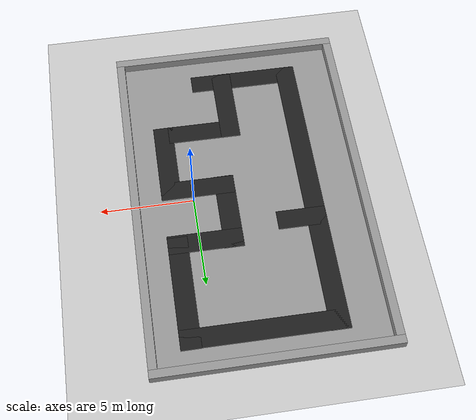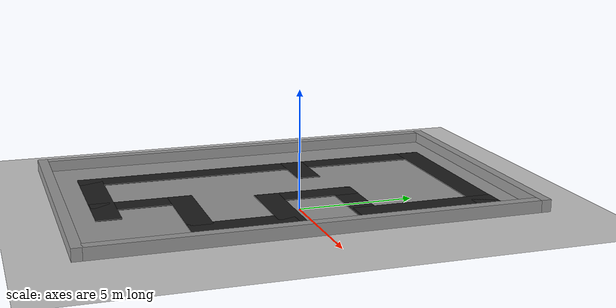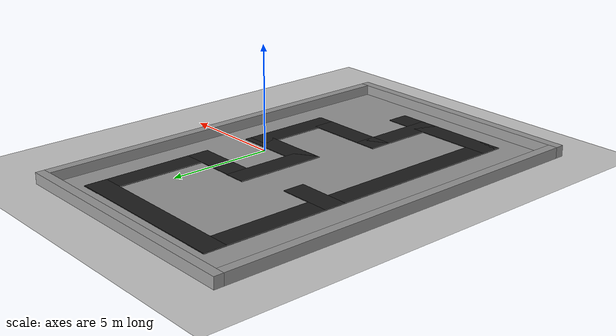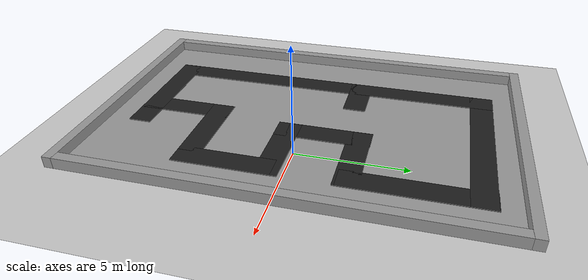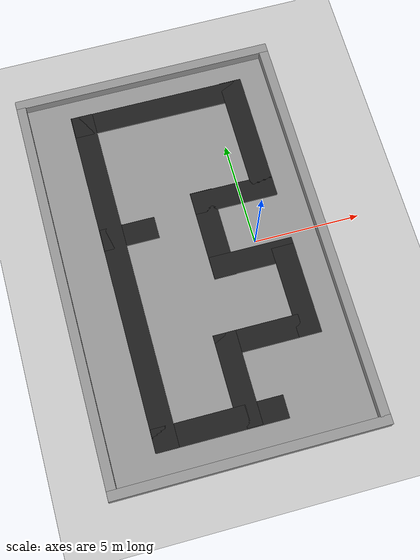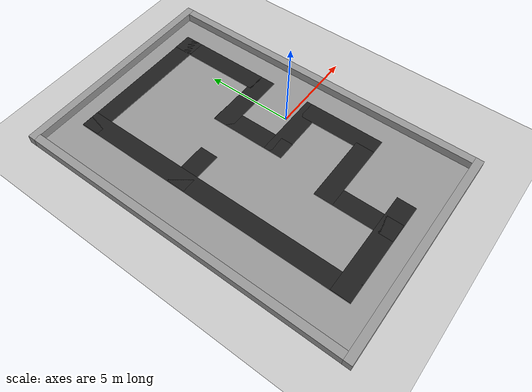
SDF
<sdf version="1.7">
 <world name="default">
  <light name="sun" type="directional">
   <pose>0 0 10 0 -0 0</pose>
   <diffuse>0.8 0.8 0.8 1</diffuse>
   <specular>0.2 0.2 0.2 1</specular>
   <attenuation>
    <range>1000</range>
    <constant>0.9</constant>
    <linear>0.01</linear>
    <quadratic>0.001</quadratic>
   </attenuation>
   <direction>-0.5 0.1 -0.9</direction>
   <spot><inner_angle>0</inner_angle><outer_angle>0</outer_angle><falloff>0</falloff></spot>
  </light>
  <model name="ground_plane">
   <static>1</static>
   <link name="link">
    <collision name="collision">
     <geometry><plane><normal>0 0 1</normal><size>100 100</size></plane></geometry>
     <surface>
      <contact><collide_bitmask>65535</collide_bitmask></contact>
      <friction><ode><mu>100</mu><mu2>50</mu2></ode></friction>
     </surface>
    </collision>
    <visual name="visual">
     <cast_shadows>0</cast_shadows>
     <geometry><plane><normal>0 0 1</normal><size>100 100</size></plane></geometry>
     <material>
      <script><uri>file://media/materials/scripts/gazebo.material</uri><name>Gazebo/Grey</name></script>
     </material>
    </visual>
   </link>
  </model>
  <gravity>0 0 -9.8</gravity>
  <magnetic_field>6e-06 2.3e-05 -4.2e-05</magnetic_field>
  <atmosphere type="adiabatic"/>
  <physics type="ode">
   <max_step_size>0.001</max_step_size>
   <real_time_factor>1</real_time_factor>
   <real_time_update_rate>1000</real_time_update_rate>
  </physics>
  <scene><ambient>0.4 0.4 0.4 1</ambient><background>0.7 0.7 0.7 1</background><shadows>1</shadows></scene>
  <spherical_coordinates>
   <surface_model>EARTH_WGS84</surface_model>
   <latitude_deg>0</latitude_deg>
   <longitude_deg>0</longitude_deg>
   <elevation>0</elevation>
   <heading_deg>0</heading_deg>
  </spherical_coordinates>
  <model name="unit_box_wall">
   <link name="unit_box::link">
    <inertial>
     <mass>1</mass>
     <inertia>
      <ixx>0.166667</ixx>
      <ixy>0</ixy>
      <ixz>0</ixz>
      <iyy>0.166667</iyy>
      <iyz>0</iyz>
      <izz>0.166667</izz>
     </inertia>
    </inertial>
    <visual name="visual">
     <geometry><box><size>0.446113 18.5982 1</size></box></geometry>
     <material>
      <script><name>Gazebo/Grey</name><uri>file://media/materials/scripts/gazebo.material</uri></script>
      <shader type="pixel"/>
     </material>
    </visual>
    <collision name="collision">
     <geometry><box><size>0.446113 18.5982 1</size></box></geometry>
     <surface>
      <friction>
       <ode><mu>1</mu><mu2>1</mu2><fdir1>0 0 0</fdir1><slip1>0</slip1><slip2>0</slip2></ode>
       <torsional>
        <coefficient>1</coefficient>
        <patch_radius>0</patch_radius>
        <surface_radius>0</surface_radius>
        <use_patch_radius>1</use_patch_radius>
        <ode><slip>0</slip></ode>
       </torsional>
      </friction>
      <bounce><restitution_coefficient>0</restitution_coefficient><threshold>1e+06</threshold></bounce>
      <contact>
       <collide_without_contact>0</collide_without_contact>
       <collide_without_contact_bitmask>1</collide_without_contact_bitmask>
       <collide_bitmask>1</collide_bitmask>
       <ode>
        <soft_cfm>0</soft_cfm>
        <soft_erp>0.2</soft_erp>
        <kp>1e+13</kp>
        <kd>1</kd>
        <max_vel>0.01</max_vel>
        <min_depth>0</min_depth>
       </ode>
       <bullet>
        <split_impulse>1</split_impulse>
        <split_impulse_penetration_threshold>-0.01</split_impulse_penetration_threshold>
        <soft_cfm>0</soft_cfm>
        <soft_erp>0.2</soft_erp>
        <kp>1e+13</kp>
        <kd>1</kd>
       </bullet>
      </contact>
     </surface>
    </collision>
   </link>
   <static>1</static>
   <allow_auto_disable>0</allow_auto_disable>
   <pose>-9.02597 0.034785 0 0 -0 0</pose>
  </model>
  <model name="unit_box_wall_clone">
   <link name="unit_box::link">
    <inertial>
     <mass>1</mass>
     <inertia>
      <ixx>0.166667</ixx>
      <ixy>0</ixy>
      <ixz>0</ixz>
      <iyy>0.166667</iyy>
      <iyz>0</iyz>
      <izz>0.166667</izz>
     </inertia>
    </inertial>
    <visual name="visual">
     <geometry><box><size>0.446113 18.5982 1</size></box></geometry>
     <material>
      <script><name>Gazebo/Grey</name><uri>file://media/materials/scripts/gazebo.material</uri></script>
      <shader type="pixel"/>
     </material>
    </visual>
    <collision name="collision">
     <geometry><box><size>0.446113 18.5982 1</size></box></geometry>
     <surface>
      <friction>
       <ode><mu>1</mu><mu2>1</mu2><fdir1>0 0 0</fdir1><slip1>0</slip1><slip2>0</slip2></ode>
       <torsional>
        <coefficient>1</coefficient>
        <patch_radius>0</patch_radius>
        <surface_radius>0</surface_radius>
        <use_patch_radius>1</use_patch_radius>
        <ode><slip>0</slip></ode>
       </torsional>
      </friction>
      <bounce><restitution_coefficient>0</restitution_coefficient><threshold>1e+06</threshold></bounce>
      <contact>
       <collide_without_contact>0</collide_without_contact>
       <collide_without_contact_bitmask>1</collide_without_contact_bitmask>
       <collide_bitmask>1</collide_bitmask>
       <ode>
        <soft_cfm>0</soft_cfm>
        <soft_erp>0.2</soft_erp>
        <kp>1e+13</kp>
        <kd>1</kd>
        <max_vel>0.01</max_vel>
        <min_depth>0</min_depth>
       </ode>
       <bullet>
        <split_impulse>1</split_impulse>
        <split_impulse_penetration_threshold>-0.01</split_impulse_penetration_threshold>
        <soft_cfm>0</soft_cfm>
        <soft_erp>0.2</soft_erp>
        <kp>1e+13</kp>
        <kd>1</kd>
       </bullet>
      </contact>
     </surface>
    </collision>
   </link>
   <static>1</static>
   <allow_auto_disable>0</allow_auto_disable>
   <pose>3.13218 0.00569 0 0 -0 0</pose>
  </model>
  <model name="unit_box_wall_clone_0">
   <link name="unit_box::link">
    <inertial>
     <mass>1</mass>
     <inertia>
      <ixx>0.166667</ixx>
      <ixy>0</ixy>
      <ixz>0</ixz>
      <iyy>0.166667</iyy>
      <iyz>0</iyz>
      <izz>0.166667</izz>
     </inertia>
    </inertial>
    <visual name="visual">
     <geometry><box><size>0.446113 12.605 1</size></box></geometry>
     <material>
      <script><name>Gazebo/Grey</name><uri>file://media/materials/scripts/gazebo.material</uri></script>
      <shader type="pixel"/>
     </material>
    </visual>
    <collision name="collision">
     <geometry><box><size>0.446113 12.605 1</size></box></geometry>
     <surface>
      <friction>
       <ode><mu>1</mu><mu2>1</mu2><fdir1>0 0 0</fdir1><slip1>0</slip1><slip2>0</slip2></ode>
       <torsional>
        <coefficient>1</coefficient>
        <patch_radius>0</patch_radius>
        <surface_radius>0</surface_radius>
        <use_patch_radius>1</use_patch_radius>
        <ode><slip>0</slip></ode>
       </torsional>
      </friction>
      <bounce><restitution_coefficient>0</restitution_coefficient><threshold>1e+06</threshold></bounce>
      <contact>
       <collide_without_contact>0</collide_without_contact>
       <collide_without_contact_bitmask>1</collide_without_contact_bitmask>
       <collide_bitmask>1</collide_bitmask>
       <ode>
        <soft_cfm>0</soft_cfm>
        <soft_erp>0.2</soft_erp>
        <kp>1e+13</kp>
        <kd>1</kd>
        <max_vel>0.01</max_vel>
        <min_depth>0</min_depth>
       </ode>
       <bullet>
        <split_impulse>1</split_impulse>
        <split_impulse_penetration_threshold>-0.01</split_impulse_penetration_threshold>
        <soft_cfm>0</soft_cfm>
        <soft_erp>0.2</soft_erp>
        <kp>1e+13</kp>
        <kd>1</kd>
       </bullet>
      </contact>
     </surface>
    </collision>
   </link>
   <static>1</static>
   <allow_auto_disable>0</allow_auto_disable>
   <pose>-2.94746 -9.48662 0 0 0 -1.57124</pose>
  </model>
  <model name="unit_box_wall_clone_0_clone">
   <link name="unit_box::link">
    <inertial>
     <mass>1</mass>
     <inertia>
      <ixx>0.166667</ixx>
      <ixy>0</ixy>
      <ixz>0</ixz>
      <iyy>0.166667</iyy>
      <iyz>0</iyz>
      <izz>0.166667</izz>
     </inertia>
    </inertial>
    <visual name="visual">
     <geometry><box><size>0.446113 12.605 1</size></box></geometry>
     <material>
      <script><name>Gazebo/Grey</name><uri>file://media/materials/scripts/gazebo.material</uri></script>
      <shader type="pixel"/>
     </material>
    </visual>
    <collision name="collision">
     <geometry><box><size>0.446113 12.605 1</size></box></geometry>
     <surface>
      <friction>
       <ode><mu>1</mu><mu2>1</mu2><fdir1>0 0 0</fdir1><slip1>0</slip1><slip2>0</slip2></ode>
       <torsional>
        <coefficient>1</coefficient>
        <patch_radius>0</patch_radius>
        <surface_radius>0</surface_radius>
        <use_patch_radius>1</use_patch_radius>
        <ode><slip>0</slip></ode>
       </torsional>
      </friction>
      <bounce><restitution_coefficient>0</restitution_coefficient><threshold>1e+06</threshold></bounce>
      <contact>
       <collide_without_contact>0</collide_without_contact>
       <collide_without_contact_bitmask>1</collide_without_contact_bitmask>
       <collide_bitmask>1</collide_bitmask>
       <ode>
        <soft_cfm>0</soft_cfm>
        <soft_erp>0.2</soft_erp>
        <kp>1e+13</kp>
        <kd>1</kd>
        <max_vel>0.01</max_vel>
        <min_depth>0</min_depth>
       </ode>
       <bullet>
        <split_impulse>1</split_impulse>
        <split_impulse_penetration_threshold>-0.01</split_impulse_penetration_threshold>
        <soft_cfm>0</soft_cfm>
        <soft_erp>0.2</soft_erp>
        <kp>1e+13</kp>
        <kd>1</kd>
       </bullet>
      </contact>
     </surface>
    </collision>
   </link>
   <static>1</static>
   <allow_auto_disable>0</allow_auto_disable>
   <pose>-2.94746 9.5173 0 0 0 -1.57124</pose>
  </model>
  <model name="unit_box_wall_0">
   <link name="unit_box::link">
    <inertial>
     <mass>1</mass>
     <inertia>
      <ixx>0.166667</ixx>
      <ixy>0</ixy>
      <ixz>0</ixz>
      <iyy>0.166667</iyy>
      <iyz>0</iyz>
      <izz>0.166667</izz>
     </inertia>
    </inertial>
    <visual name="visual">
     <geometry><box><size>11.9617 18.9194 0.225866</size></box></geometry>
     <material>
      <script><name>Gazebo/Grey</name><uri>file://media/materials/scripts/gazebo.material</uri></script>
      <shader type="pixel"/>
     </material>
    </visual>
    <collision name="collision">
     <geometry><box><size>11.9617 18.9194 0.225866</size></box></geometry>
     <surface>
      <friction>
       <ode><mu>1</mu><mu2>1</mu2><fdir1>0 0 0</fdir1><slip1>0</slip1><slip2>0</slip2></ode>
       <torsional>
        <coefficient>1</coefficient>
        <patch_radius>0</patch_radius>
        <surface_radius>0</surface_radius>
        <use_patch_radius>1</use_patch_radius>
        <ode><slip>0</slip></ode>
       </torsional>
      </friction>
      <bounce><restitution_coefficient>0</restitution_coefficient><threshold>1e+06</threshold></bounce>
      <contact>
       <collide_without_contact>0</collide_without_contact>
       <collide_without_contact_bitmask>1</collide_without_contact_bitmask>
       <collide_bitmask>1</collide_bitmask>
       <ode>
        <soft_cfm>0</soft_cfm>
        <soft_erp>0.2</soft_erp>
        <kp>1e+13</kp>
        <kd>1</kd>
        <max_vel>0.01</max_vel>
        <min_depth>0</min_depth>
       </ode>
       <bullet>
        <split_impulse>1</split_impulse>
        <split_impulse_penetration_threshold>-0.01</split_impulse_penetration_threshold>
        <soft_cfm>0</soft_cfm>
        <soft_erp>0.2</soft_erp>
        <kp>1e+13</kp>
        <kd>1</kd>
       </bullet>
      </contact>
     </surface>
    </collision>
   </link>
   <static>1</static>
   <allow_auto_disable>0</allow_auto_disable>
   <pose>-3.06639 0.169039 -0.095815 0 -0 0</pose>
  </model>
  <model name="unit_box_wall_1">
   <link name="unit_box::link">
    <inertial>
     <mass>1</mass>
     <inertia>
      <ixx>0.166667</ixx>
      <ixy>0</ixy>
      <ixz>0</ixz>
      <iyy>0.166667</iyy>
      <iyz>0</iyz>
      <izz>0.166667</izz>
     </inertia>
    </inertial>
    <visual name="visual">
     <geometry><box><size>1.06778 16.6278 1</size></box></geometry>
     <material>
      <script><name>Gazebo/Black</name><uri>file://media/materials/scripts/gazebo.material</uri></script>
      <shader type="pixel"/>
     </material>
    </visual>
    <collision name="collision">
     <geometry><box><size>1.06778 16.6278 1</size></box></geometry>
     <surface>
      <friction>
       <ode><mu>1</mu><mu2>1</mu2><fdir1>0 0 0</fdir1><slip1>0</slip1><slip2>0</slip2></ode>
       <torsional>
        <coefficient>1</coefficient>
        <patch_radius>0</patch_radius>
        <surface_radius>0</surface_radius>
        <use_patch_radius>1</use_patch_radius>
        <ode><slip>0</slip></ode>
       </torsional>
      </friction>
      <bounce><restitution_coefficient>0</restitution_coefficient><threshold>1e+06</threshold></bounce>
      <contact>
       <collide_without_contact>0</collide_without_contact>
       <collide_without_contact_bitmask>1</collide_without_contact_bitmask>
       <collide_bitmask>1</collide_bitmask>
       <ode>
        <soft_cfm>0</soft_cfm>
        <soft_erp>0.2</soft_erp>
        <kp>1e+13</kp>
        <kd>1</kd>
        <max_vel>0.01</max_vel>
        <min_depth>0</min_depth>
       </ode>
       <bullet>
        <split_impulse>1</split_impulse>
        <split_impulse_penetration_threshold>-0.01</split_impulse_penetration_threshold>
        <soft_cfm>0</soft_cfm>
        <soft_erp>0.2</soft_erp>
        <kp>1e+13</kp>
        <kd>1</kd>
       </bullet>
      </contact>
     </surface>
    </collision>
   </link>
   <static>1</static>
   <allow_auto_disable>0</allow_auto_disable>
   <pose>-6.30839 0.101733 -0.45067 0 -0 0</pose>
  </model>
  <model name="unit_box_wall_1_clone">
   <link name="unit_box::link">
    <inertial>
     <mass>1</mass>
     <inertia>
      <ixx>0.166667</ixx>
      <ixy>0</ixy>
      <ixz>0</ixz>
      <iyy>0.166667</iyy>
      <iyz>0</iyz>
      <izz>0.166667</izz>
     </inertia>
    </inertial>
    <visual name="visual">
     <geometry><box><size>1.06778 6.01301 1</size></box></geometry>
     <material>
      <script><name>Gazebo/Black</name><uri>file://media/materials/scripts/gazebo.material</uri></script>
      <shader type="pixel"/>
     </material>
    </visual>
    <collision name="collision">
     <geometry><box><size>1.06778 6.01301 1</size></box></geometry>
     <surface>
      <friction>
       <ode><mu>1</mu><mu2>1</mu2><fdir1>0 0 0</fdir1><slip1>0</slip1><slip2>0</slip2></ode>
       <torsional>
        <coefficient>1</coefficient>
        <patch_radius>0</patch_radius>
        <surface_radius>0</surface_radius>
        <use_patch_radius>1</use_patch_radius>
        <ode><slip>0</slip></ode>
       </torsional>
      </friction>
      <bounce><restitution_coefficient>0</restitution_coefficient><threshold>1e+06</threshold></bounce>
      <contact>
       <collide_without_contact>0</collide_without_contact>
       <collide_without_contact_bitmask>1</collide_without_contact_bitmask>
       <collide_bitmask>1</collide_bitmask>
       <ode>
        <soft_cfm>0</soft_cfm>
        <soft_erp>0.2</soft_erp>
        <kp>1e+13</kp>
        <kd>1</kd>
        <max_vel>0.01</max_vel>
        <min_depth>0</min_depth>
       </ode>
       <bullet>
        <split_impulse>1</split_impulse>
        <split_impulse_penetration_threshold>-0.01</split_impulse_penetration_threshold>
        <soft_cfm>0</soft_cfm>
        <soft_erp>0.2</soft_erp>
        <kp>1e+13</kp>
        <kd>1</kd>
       </bullet>
      </contact>
     </surface>
    </collision>
   </link>
   <static>1</static>
   <allow_auto_disable>0</allow_auto_disable>
   <pose>-3.82069 -7.70005 -0.45067 0 0 -1.57538</pose>
  </model>
  <model name="unit_box_wall_1_clone_clone">
   <link name="unit_box::link">
    <inertial>
     <mass>1</mass>
     <inertia>
      <ixx>0.166667</ixx>
      <ixy>0</ixy>
      <ixz>0</ixz>
      <iyy>0.166667</iyy>
      <iyz>0</iyz>
      <izz>0.166667</izz>
     </inertia>
    </inertial>
    <visual name="visual">
     <geometry><box><size>1.06778 8.51352 1</size></box></geometry>
     <material>
      <script><name>Gazebo/Black</name><uri>file://media/materials/scripts/gazebo.material</uri></script>
      <shader type="pixel"/>
     </material>
    </visual>
    <collision name="collision">
     <geometry><box><size>1.06778 8.51352 1</size></box></geometry>
     <surface>
      <friction>
       <ode><mu>1</mu><mu2>1</mu2><fdir1>0 0 0</fdir1><slip1>0</slip1><slip2>0</slip2></ode>
       <torsional>
        <coefficient>1</coefficient>
        <patch_radius>0</patch_radius>
        <surface_radius>0</surface_radius>
        <use_patch_radius>1</use_patch_radius>
        <ode><slip>0</slip></ode>
       </torsional>
      </friction>
      <bounce><restitution_coefficient>0</restitution_coefficient><threshold>1e+06</threshold></bounce>
      <contact>
       <collide_without_contact>0</collide_without_contact>
       <collide_without_contact_bitmask>1</collide_without_contact_bitmask>
       <collide_bitmask>1</collide_bitmask>
       <ode>
        <soft_cfm>0</soft_cfm>
        <soft_erp>0.2</soft_erp>
        <kp>1e+13</kp>
        <kd>1</kd>
        <max_vel>0.01</max_vel>
        <min_depth>0</min_depth>
       </ode>
       <bullet>
        <split_impulse>1</split_impulse>
        <split_impulse_penetration_threshold>-0.01</split_impulse_penetration_threshold>
        <soft_cfm>0</soft_cfm>
        <soft_erp>0.2</soft_erp>
        <kp>1e+13</kp>
        <kd>1</kd>
       </bullet>
      </contact>
     </surface>
    </collision>
   </link>
   <static>1</static>
   <allow_auto_disable>0</allow_auto_disable>
   <pose>-2.56074 7.85762 -0.45067 0 0 -1.57538</pose>
  </model>
  <model name="unit_box_wall_1_clone_0">
   <link name="unit_box::link">
    <inertial>
     <mass>1</mass>
     <inertia>
      <ixx>0.166667</ixx>
      <ixy>0</ixy>
      <ixz>0</ixz>
      <iyy>0.166667</iyy>
      <iyz>0</iyz>
      <izz>0.166667</izz>
     </inertia>
    </inertial>
    <visual name="visual">
     <geometry><box><size>1.06778 4.3853 1</size></box></geometry>
     <material>
      <script><name>Gazebo/Black</name><uri>file://media/materials/scripts/gazebo.material</uri></script>
      <shader type="pixel"/>
     </material>
    </visual>
    <collision name="collision">
     <geometry><box><size>1.06778 4.3853 1</size></box></geometry>
     <surface>
      <friction>
       <ode><mu>1</mu><mu2>1</mu2><fdir1>0 0 0</fdir1><slip1>0</slip1><slip2>0</slip2></ode>
       <torsional>
        <coefficient>1</coefficient>
        <patch_radius>0</patch_radius>
        <surface_radius>0</surface_radius>
        <use_patch_radius>1</use_patch_radius>
        <ode><slip>0</slip></ode>
       </torsional>
      </friction>
      <bounce><restitution_coefficient>0</restitution_coefficient><threshold>1e+06</threshold></bounce>
      <contact>
       <collide_without_contact>0</collide_without_contact>
       <collide_without_contact_bitmask>1</collide_without_contact_bitmask>
       <collide_bitmask>1</collide_bitmask>
       <ode>
        <soft_cfm>0</soft_cfm>
        <soft_erp>0.2</soft_erp>
        <kp>1e+13</kp>
        <kd>1</kd>
        <max_vel>0.01</max_vel>
        <min_depth>0</min_depth>
       </ode>
       <bullet>
        <split_impulse>1</split_impulse>
        <split_impulse_penetration_threshold>-0.01</split_impulse_penetration_threshold>
        <soft_cfm>0</soft_cfm>
        <soft_erp>0.2</soft_erp>
        <kp>1e+13</kp>
        <kd>1</kd>
       </bullet>
      </contact>
     </surface>
    </collision>
   </link>
   <static>1</static>
   <allow_auto_disable>0</allow_auto_disable>
   <pose>-2.55343 -6.01894 -0.45067 0 -0 0</pose>
  </model>
  <model name="unit_box_wall_1_clone_clone_0">
   <link name="unit_box::link">
    <inertial>
     <mass>1</mass>
     <inertia>
      <ixx>0.166667</ixx>
      <ixy>0</ixy>
      <ixz>0</ixz>
      <iyy>0.166667</iyy>
      <iyz>0</iyz>
      <izz>0.166667</izz>
     </inertia>
    </inertial>
    <visual name="visual">
     <geometry><box><size>1.06778 3.97506 1</size></box></geometry>
     <material>
      <script><name>Gazebo/Black</name><uri>file://media/materials/scripts/gazebo.material</uri></script>
      <shader type="pixel"/>
     </material>
    </visual>
    <collision name="collision">
     <geometry><box><size>1.06778 3.97506 1</size></box></geometry>
     <surface>
      <friction>
       <ode><mu>1</mu><mu2>1</mu2><fdir1>0 0 0</fdir1><slip1>0</slip1><slip2>0</slip2></ode>
       <torsional>
        <coefficient>1</coefficient>
        <patch_radius>0</patch_radius>
        <surface_radius>0</surface_radius>
        <use_patch_radius>1</use_patch_radius>
        <ode><slip>0</slip></ode>
       </torsional>
      </friction>
      <bounce><restitution_coefficient>0</restitution_coefficient><threshold>1e+06</threshold></bounce>
      <contact>
       <collide_without_contact>0</collide_without_contact>
       <collide_without_contact_bitmask>1</collide_without_contact_bitmask>
       <collide_bitmask>1</collide_bitmask>
       <ode>
        <soft_cfm>0</soft_cfm>
        <soft_erp>0.2</soft_erp>
        <kp>1e+13</kp>
        <kd>1</kd>
        <max_vel>0.01</max_vel>
        <min_depth>0</min_depth>
       </ode>
       <bullet>
        <split_impulse>1</split_impulse>
        <split_impulse_penetration_threshold>-0.01</split_impulse_penetration_threshold>
        <soft_cfm>0</soft_cfm>
        <soft_erp>0.2</soft_erp>
        <kp>1e+13</kp>
        <kd>1</kd>
       </bullet>
      </contact>
     </surface>
    </collision>
   </link>
   <static>1</static>
   <allow_auto_disable>0</allow_auto_disable>
   <pose>-1.09602 -4.36618 -0.45067 0 0 -1.57538</pose>
  </model>
  <model name="unit_box_wall_1_clone_0_clone">
   <link name="unit_box::link">
    <inertial>
     <mass>1</mass>
     <inertia>
      <ixx>0.166667</ixx>
      <ixy>0</ixy>
      <ixz>0</ixz>
      <iyy>0.166667</iyy>
      <iyz>0</iyz>
      <izz>0.166667</izz>
     </inertia>
    </inertial>
    <visual name="visual">
     <geometry><box><size>1.06778 4.38529 1</size></box></geometry>
     <material>
      <script><name>Gazebo/Black</name><uri>file://media/materials/scripts/gazebo.material</uri></script>
      <shader type="pixel"/>
     </material>
    </visual>
    <collision name="collision">
     <geometry><box><size>1.06778 4.38529 1</size></box></geometry>
     <surface>
      <friction>
       <ode><mu>1</mu><mu2>1</mu2><fdir1>0 0 0</fdir1><slip1>0</slip1><slip2>0</slip2></ode>
       <torsional>
        <coefficient>1</coefficient>
        <patch_radius>0</patch_radius>
        <surface_radius>0</surface_radius>
        <use_patch_radius>1</use_patch_radius>
        <ode><slip>0</slip></ode>
       </torsional>
      </friction>
      <bounce><restitution_coefficient>0</restitution_coefficient><threshold>1e+06</threshold></bounce>
      <contact>
       <collide_without_contact>0</collide_without_contact>
       <collide_without_contact_bitmask>1</collide_without_contact_bitmask>
       <collide_bitmask>1</collide_bitmask>
       <ode>
        <soft_cfm>0</soft_cfm>
        <soft_erp>0.2</soft_erp>
        <kp>1e+13</kp>
        <kd>1</kd>
        <max_vel>0.01</max_vel>
        <min_depth>0</min_depth>
       </ode>
       <bullet>
        <split_impulse>1</split_impulse>
        <split_impulse_penetration_threshold>-0.01</split_impulse_penetration_threshold>
        <soft_cfm>0</soft_cfm>
        <soft_erp>0.2</soft_erp>
        <kp>1e+13</kp>
        <kd>1</kd>
       </bullet>
      </contact>
     </surface>
    </collision>
   </link>
   <static>1</static>
   <allow_auto_disable>0</allow_auto_disable>
   <pose>1.17246 -2.71542 -0.45067 0 -0 0</pose>
  </model>
  <model name="unit_box_wall_1_clone_clone_0_clone">
   <link name="unit_box::link">
    <inertial>
     <mass>1</mass>
     <inertia>
      <ixx>0.166667</ixx>
      <ixy>0</ixy>
      <ixz>0</ixz>
      <iyy>0.166667</iyy>
      <iyz>0</iyz>
      <izz>0.166667</izz>
     </inertia>
    </inertial>
    <visual name="visual">
     <geometry><box><size>1.06778 3.97506 1</size></box></geometry>
     <material>
      <script><name>Gazebo/Black</name><uri>file://media/materials/scripts/gazebo.material</uri></script>
      <shader type="pixel"/>
     </material>
    </visual>
    <collision name="collision">
     <geometry><box><size>1.06778 3.97506 1</size></box></geometry>
     <surface>
      <friction>
       <ode><mu>1</mu><mu2>1</mu2><fdir1>0 0 0</fdir1><slip1>0</slip1><slip2>0</slip2></ode>
       <torsional>
        <coefficient>1</coefficient>
        <patch_radius>0</patch_radius>
        <surface_radius>0</surface_radius>
        <use_patch_radius>1</use_patch_radius>
        <ode><slip>0</slip></ode>
       </torsional>
      </friction>
      <bounce><restitution_coefficient>0</restitution_coefficient><threshold>1e+06</threshold></bounce>
      <contact>
       <collide_without_contact>0</collide_without_contact>
       <collide_without_contact_bitmask>1</collide_without_contact_bitmask>
       <collide_bitmask>1</collide_bitmask>
       <ode>
        <soft_cfm>0</soft_cfm>
        <soft_erp>0.2</soft_erp>
        <kp>1e+13</kp>
        <kd>1</kd>
        <max_vel>0.01</max_vel>
        <min_depth>0</min_depth>
       </ode>
       <bullet>
        <split_impulse>1</split_impulse>
        <split_impulse_penetration_threshold>-0.01</split_impulse_penetration_threshold>
        <soft_cfm>0</soft_cfm>
        <soft_erp>0.2</soft_erp>
        <kp>1e+13</kp>
        <kd>1</kd>
       </bullet>
      </contact>
     </surface>
    </collision>
   </link>
   <static>1</static>
   <allow_auto_disable>0</allow_auto_disable>
   <pose>-0.285704 -0.739367 -0.45067 0 0 -1.57538</pose>
  </model>
  <model name="unit_box_wall_1_clone_0_clone_clone">
   <link name="unit_box::link">
    <inertial>
     <mass>1</mass>
     <inertia>
      <ixx>0.166667</ixx>
      <ixy>0</ixy>
      <ixz>0</ixz>
      <iyy>0.166667</iyy>
      <iyz>0</iyz>
      <izz>0.166667</izz>
     </inertia>
    </inertial>
    <visual name="visual">
     <geometry><box><size>1.06778 4.38529 1</size></box></geometry>
     <material>
      <script><name>Gazebo/Black</name><uri>file://media/materials/scripts/gazebo.material</uri></script>
      <shader type="pixel"/>
     </material>
    </visual>
    <collision name="collision">
     <geometry><box><size>1.06778 4.38529 1</size></box></geometry>
     <surface>
      <friction>
       <ode><mu>1</mu><mu2>1</mu2><fdir1>0 0 0</fdir1><slip1>0</slip1><slip2>0</slip2></ode>
       <torsional>
        <coefficient>1</coefficient>
        <patch_radius>0</patch_radius>
        <surface_radius>0</surface_radius>
        <use_patch_radius>1</use_patch_radius>
        <ode><slip>0</slip></ode>
       </torsional>
      </friction>
      <bounce><restitution_coefficient>0</restitution_coefficient><threshold>1e+06</threshold></bounce>
      <contact>
       <collide_without_contact>0</collide_without_contact>
       <collide_without_contact_bitmask>1</collide_without_contact_bitmask>
       <collide_bitmask>1</collide_bitmask>
       <ode>
        <soft_cfm>0</soft_cfm>
        <soft_erp>0.2</soft_erp>
        <kp>1e+13</kp>
        <kd>1</kd>
        <max_vel>0.01</max_vel>
        <min_depth>0</min_depth>
       </ode>
       <bullet>
        <split_impulse>1</split_impulse>
        <split_impulse_penetration_threshold>-0.01</split_impulse_penetration_threshold>
        <soft_cfm>0</soft_cfm>
        <soft_erp>0.2</soft_erp>
        <kp>1e+13</kp>
        <kd>1</kd>
       </bullet>
      </contact>
     </surface>
    </collision>
   </link>
   <static>1</static>
   <allow_auto_disable>0</allow_auto_disable>
   <pose>-1.75064 0.911055 -0.45067 0 -0 0</pose>
  </model>
  <model name="unit_box_wall_1_clone_clone_0_clone_clone">
   <link name="unit_box::link">
    <inertial>
     <mass>1</mass>
     <inertia>
      <ixx>0.166667</ixx>
      <ixy>0</ixy>
      <ixz>0</ixz>
      <iyy>0.166667</iyy>
      <iyz>0</iyz>
      <izz>0.166667</izz>
     </inertia>
    </inertial>
    <visual name="visual">
     <geometry><box><size>1.06778 3.97506 1</size></box></geometry>
     <material>
      <script><name>Gazebo/Black</name><uri>file://media/materials/scripts/gazebo.material</uri></script>
      <shader type="pixel"/>
     </material>
    </visual>
    <collision name="collision">
     <geometry><box><size>1.06778 3.97506 1</size></box></geometry>
     <surface>
      <friction>
       <ode><mu>1</mu><mu2>1</mu2><fdir1>0 0 0</fdir1><slip1>0</slip1><slip2>0</slip2></ode>
       <torsional>
        <coefficient>1</coefficient>
        <patch_radius>0</patch_radius>
        <surface_radius>0</surface_radius>
        <use_patch_radius>1</use_patch_radius>
        <ode><slip>0</slip></ode>
       </torsional>
      </friction>
      <bounce><restitution_coefficient>0</restitution_coefficient><threshold>1e+06</threshold></bounce>
      <contact>
       <collide_without_contact>0</collide_without_contact>
       <collide_without_contact_bitmask>1</collide_without_contact_bitmask>
       <collide_bitmask>1</collide_bitmask>
       <ode>
        <soft_cfm>0</soft_cfm>
        <soft_erp>0.2</soft_erp>
        <kp>1e+13</kp>
        <kd>1</kd>
        <max_vel>0.01</max_vel>
        <min_depth>0</min_depth>
       </ode>
       <bullet>
        <split_impulse>1</split_impulse>
        <split_impulse_penetration_threshold>-0.01</split_impulse_penetration_threshold>
        <soft_cfm>0</soft_cfm>
        <soft_erp>0.2</soft_erp>
        <kp>1e+13</kp>
        <kd>1</kd>
       </bullet>
      </contact>
     </surface>
    </collision>
   </link>
   <static>1</static>
   <allow_auto_disable>0</allow_auto_disable>
   <pose>-0.288896 2.54724 -0.45067 0 0 -1.57538</pose>
  </model>
  <model name="unit_box_wall_1_clone_0_clone_clone_0">
   <link name="unit_box::link">
    <inertial>
     <mass>1</mass>
     <inertia>
      <ixx>0.166667</ixx>
      <ixy>0</ixy>
      <ixz>0</ixz>
      <iyy>0.166667</iyy>
      <iyz>0</iyz>
      <izz>0.166667</izz>
     </inertia>
    </inertial>
    <visual name="visual">
     <geometry><box><size>1.06778 6.2782 1</size></box></geometry>
     <material>
      <script><name>Gazebo/Black</name><uri>file://media/materials/scripts/gazebo.material</uri></script>
      <shader type="pixel"/>
     </material>
    </visual>
    <collision name="collision">
     <geometry><box><size>1.06778 6.2782 1</size></box></geometry>
     <surface>
      <friction>
       <ode><mu>1</mu><mu2>1</mu2><fdir1>0 0 0</fdir1><slip1>0</slip1><slip2>0</slip2></ode>
       <torsional>
        <coefficient>1</coefficient>
        <patch_radius>0</patch_radius>
        <surface_radius>0</surface_radius>
        <use_patch_radius>1</use_patch_radius>
        <ode><slip>0</slip></ode>
       </torsional>
      </friction>
      <bounce><restitution_coefficient>0</restitution_coefficient><threshold>1e+06</threshold></bounce>
      <contact>
       <collide_without_contact>0</collide_without_contact>
       <collide_without_contact_bitmask>1</collide_without_contact_bitmask>
       <collide_bitmask>1</collide_bitmask>
       <ode>
        <soft_cfm>0</soft_cfm>
        <soft_erp>0.2</soft_erp>
        <kp>1e+13</kp>
        <kd>1</kd>
        <max_vel>0.01</max_vel>
        <min_depth>0</min_depth>
       </ode>
       <bullet>
        <split_impulse>1</split_impulse>
        <split_impulse_penetration_threshold>-0.01</split_impulse_penetration_threshold>
        <soft_cfm>0</soft_cfm>
        <soft_erp>0.2</soft_erp>
        <kp>1e+13</kp>
        <kd>1</kd>
       </bullet>
      </contact>
     </surface>
    </collision>
   </link>
   <static>1</static>
   <allow_auto_disable>0</allow_auto_disable>
   <pose>1.1652 5.25401 -0.45067 0 -0 0</pose>
  </model>
  <model name="unit_box_wall_1_clone_clone_0_clone_clone_0">
   <link name="unit_box::link">
    <inertial>
     <mass>1</mass>
     <inertia>
      <ixx>0.166667</ixx>
      <ixy>0</ixy>
      <ixz>0</ixz>
      <iyy>0.166667</iyy>
      <iyz>0</iyz>
      <izz>0.166667</izz>
     </inertia>
    </inertial>
    <visual name="visual">
     <geometry><box><size>1.06778 2.61928 1</size></box></geometry>
     <material>
      <script><name>Gazebo/Black</name><uri>file://media/materials/scripts/gazebo.material</uri></script>
      <shader type="pixel"/>
     </material>
    </visual>
    <collision name="collision">
     <geometry><box><size>1.06778 2.61928 1</size></box></geometry>
     <surface>
      <friction>
       <ode><mu>1</mu><mu2>1</mu2><fdir1>0 0 0</fdir1><slip1>0</slip1><slip2>0</slip2></ode>
       <torsional>
        <coefficient>1</coefficient>
        <patch_radius>0</patch_radius>
        <surface_radius>0</surface_radius>
        <use_patch_radius>1</use_patch_radius>
        <ode><slip>0</slip></ode>
       </torsional>
      </friction>
      <bounce><restitution_coefficient>0</restitution_coefficient><threshold>1e+06</threshold></bounce>
      <contact>
       <collide_without_contact>0</collide_without_contact>
       <collide_without_contact_bitmask>1</collide_without_contact_bitmask>
       <collide_bitmask>1</collide_bitmask>
       <ode>
        <soft_cfm>0</soft_cfm>
        <soft_erp>0.2</soft_erp>
        <kp>1e+13</kp>
        <kd>1</kd>
        <max_vel>0.01</max_vel>
        <min_depth>0</min_depth>
       </ode>
       <bullet>
        <split_impulse>1</split_impulse>
        <split_impulse_penetration_threshold>-0.01</split_impulse_penetration_threshold>
        <soft_cfm>0</soft_cfm>
        <soft_erp>0.2</soft_erp>
        <kp>1e+13</kp>
        <kd>1</kd>
       </bullet>
      </contact>
     </surface>
    </collision>
   </link>
   <static>1</static>
   <allow_auto_disable>0</allow_auto_disable>
   <pose>-5.51349 1.8826 -0.45067 0 0 -1.57538</pose>
  </model>
 </world>
</sdf>
